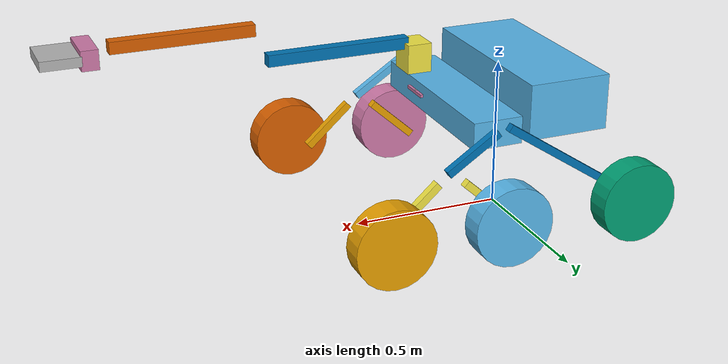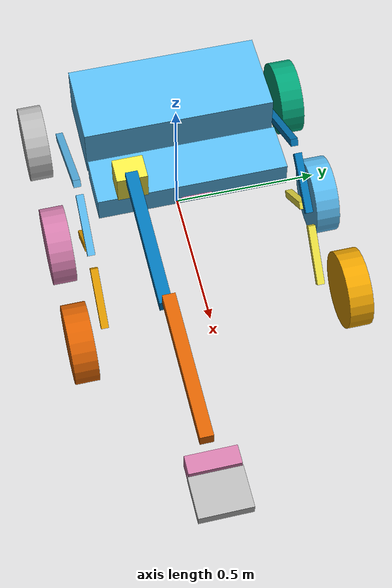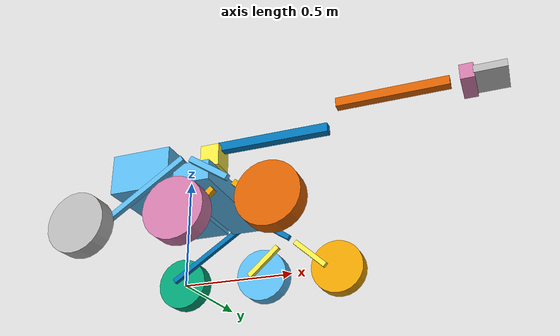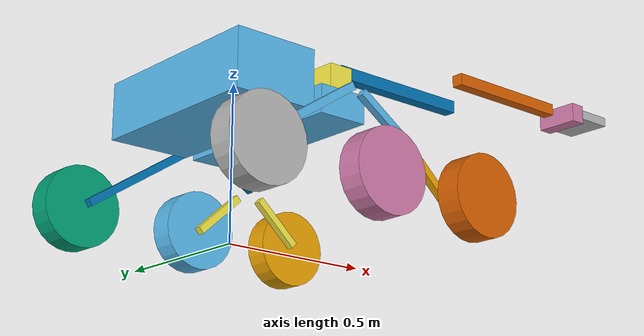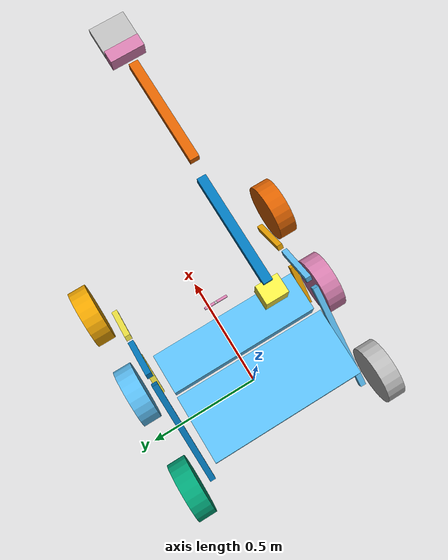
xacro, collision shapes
<?xml version="1.0"?>
<robot xmlns:xacro="http://www.ros.org/wiki/xacro" name="rover">

  <!-- Constants -->

  <xacro:property name="base_width" value="0.63"/>
  <xacro:property name="base_len" value="0.478"/>
  <xacro:property name="base_height" value="0.183"/>
  <xacro:property name="wheel_radius" value="0.13"/>
  <xacro:property name="wheel_width" value="0.08"/>
  <xacro:property name="wheel_mass" value="3"/>
  <xacro:property name="chassis_mass" value="15"/>
  <xacro:property name="wheel_torque" value="2.68"/>

  <xacro:property name="TAU" value="6.2831855"/>

  <!-- Inertial Macros-->

  <xacro:macro name="cylinder_inertia" params="m r h">
    <inertial>
      <mass value="${m}"/>
      <inertia ixx="${m*(3*r*r+h*h)/12}" ixy="0" ixz="0"
               iyy="${m*(3*r*r+h*h)/12}" iyz="0"
               izz="${m*r*r/2}"/>
    </inertial>
  </xacro:macro>

  <xacro:macro name="box_inertia" params="m d w h">
    <inertial>
      <mass value="${m}"/>
      <inertia ixx="${m / 12.0 * (w*w + h*h)}" ixy="0" ixz="0"
               iyy="${m / 12.0 * (d*d + h*h)}" iyz="0"
               izz="${m / 12.0 * (d*d + w*w)}"/>
    </inertial>
  </xacro:macro>

  <xacro:macro name="sphere_inertia" params="m r">
    <inertial>
      <mass value="${m}"/>
      <inertia ixx="${2.0*m*(r*r)/5.0}" ixy="0" ixz="0"
               iyy="${2.0*m*(r*r)/5.0}" iyz="0"
               izz="${2.0*m*(r*r)/5.0}"/>
    </inertial>
  </xacro:macro>

  <!-- Joints/Links Macros -->

  <xacro:macro name="arm_link" params="name m x y z dz:=0">
    <link name="arm_${name}_link">
      <xacro:box_inertia m="${m}" d="${y}" w="${x}" h="${z}"/>
      <visual>
        <geometry>
          <mesh filename="package://mrover/urdf/meshes/arm_${name}.fbx"/>
        </geometry>
      </visual>
      <collision>
        <origin xyz="${x / 2} 0 ${dz}"/>
        <geometry>
          <box size="${x * 0.85} ${y} ${z}"/>
        </geometry>
      </collision>
    </link>
  </xacro:macro>

  <xacro:macro name="arm_revolute_joint" params="parent child x y z lower upper">
    <joint name="${parent}_link_to_${child}_link" type="revolute">
      <origin xyz="${x} ${y} ${z}"/>
      <parent link="${parent}_link"/>
      <child link="${child}_link"/>
      <axis xyz="0 1 0"/>
      <limit lower="${lower}" upper="${upper}" effort="0" velocity="0"/>
    </joint>
  </xacro:macro>

  <xacro:macro name="wheel" params="pos side reflect">
    <link name="${pos}_${side}_wheel_link">
      <xacro:cylinder_inertia m="${wheel_mass}" r="${wheel_radius}" h="${wheel_width}"/>
      <visual>
        <geometry>
          <mesh filename="package://mrover/urdf/meshes/rover_${side}_wheel.fbx"/>
        </geometry>
      </visual>
      <collision>
        <geometry>
          <cylinder length="${wheel_width}" radius="${wheel_radius}"/>
        </geometry>
      </collision>
    </link>
  </xacro:macro>

  <xacro:macro name="wheels" params="side reflect">
    <xacro:wheel pos="front" side="${side}" reflect="${reflect}"/>
    <xacro:wheel pos="center" side="${side}" reflect="${reflect}"/>
    <xacro:wheel pos="back" side="${side}" reflect="${reflect}"/>

    <link name="${side}_bogie_link">
      <xacro:box_inertia m="3" d="0.5" w="0.5" h="0.5"/>
      <visual>
        <geometry>
          <mesh filename="package://mrover/urdf/meshes/rover_${side}_bogie.fbx"/>
        </geometry>
      </visual>
      <collision>
        <origin xyz="-0.14 0.1 0" rpy="0 0 -0.734"/>
        <geometry>
          <box size="0.2 0.025 0.025"/>
        </geometry>
      </collision>
      <collision>
        <origin xyz="0.1 0.088 0" rpy="0 0 0.734"/>
        <geometry>
          <box size="0.2 0.025 0.025"/>
        </geometry>
      </collision>
    </link>

    <link name="${side}_rocker_link">
      <xacro:box_inertia m="3" d="0.5" w="0.5" h="0.5"/>
      <visual>
        <geometry>
          <mesh filename="package://mrover/urdf/meshes/rover_${side}_rocker.fbx"/>
        </geometry>
      </visual>
      <collision>
        <origin xyz="0.11 0.077 0" rpy="0 0 0.585"/>
        <geometry>
          <box size="0.2 0.025 0.025"/>
        </geometry>
      </collision>
      <collision>
        <origin xyz="-0.22 0.15 0" rpy="0 0 -0.585"/>
        <geometry>
          <box size="0.5 0.025 0.025"/>
        </geometry>
      </collision>
    </link>

    <joint name="chassis_link_to_${side}_rocker_link" type="revolute">
      <parent link="chassis_link"/>
      <child link="${side}_rocker_link"/>
      <origin xyz="0.164665 ${reflect * (base_width/2 + 0.05)} 0" rpy="${-TAU/4} 0 0"/>
      <axis xyz="0 0 1"/>
      <limit lower="-0.122173" upper="0.523599" effort="0" velocity="0"/>
    </joint>

    <joint name="${side}_rocker_link_to_back_${side}_wheel_link" type="continuous">
      <parent link="${side}_rocker_link"/>
      <child link="back_${side}_wheel_link"/>
      <origin xyz="-0.417094 0.28513 ${reflect * 0.09}"/>
      <axis xyz="0 0 1"/>
      <limit effort="${wheel_torque}" velocity="0"/>
    </joint>

    <joint name="${side}_rocker_link_to_${side}_bogie_link" type="revolute">
      <parent link="${side}_rocker_link"/>
      <child link="${side}_bogie_link"/>
      <origin xyz="0.198948 0.138674 0"/>
      <axis xyz="0 0 1"/>
      <limit lower="-0.349066" upper="0.349066" effort="0" velocity="0"/>
    </joint>

    <joint name="${side}_bogie_link_to_front_${side}_wheel_link" type="continuous">
      <parent link="${side}_bogie_link"/>
      <child link="front_${side}_wheel_link"/>
      <origin xyz="0.215233 0.147933 ${reflect * 0.09}"/>
      <axis xyz="0 0 1"/>
      <limit effort="${wheel_torque}" velocity="0"/>
    </joint>

    <joint name="${side}_bogie_link_to_center_${side}_wheel_link" type="continuous">
      <parent link="${side}_bogie_link"/>
      <child link="center_${side}_wheel_link"/>
      <origin xyz="-0.173532 0.147659 ${reflect * 0.09}"/>
      <axis xyz="0 0 1"/>
      <limit effort="${wheel_torque}" velocity="0"/>
    </joint>
  </xacro:macro>

  <!-- Joints/Links -->

  <link name="base_link"/>

  <link name="chassis_link">
    <xacro:box_inertia m="${chassis_mass}" d="${base_len}" w="${base_width}" h="${base_height}"/>
    <visual>
      <geometry>
        <mesh filename="package://mrover/urdf/meshes/rover_chassis.fbx"/>
      </geometry>
    </visual>
    <collision>
      <origin xyz="-0.085906 0 0"/>
      <geometry>
        <box size="0.277 ${base_width} ${base_height}"/>
      </geometry>
    </collision>
    <collision>
      <origin xyz="0.163609 0 -0.049449"/>
      <geometry>
        <box size="0.167 ${base_width} 0.0891 "/>
      </geometry>
    </collision>
  </link>

  <link name="arm_base_link"/>

  <joint name="base_link_to_arm_base_link" type="fixed">
    <origin xyz="0.199228 -0.200235 0.540196"/>
    <parent link="base_link"/>
    <child link="arm_base_link"/>
  </joint>

  <joint name="base_link_to_chassis_link" type="fixed">
    <origin xyz="0 0 0.439675"/>
    <parent link="base_link"/>
    <child link="chassis_link"/>
  </joint>

  <xacro:arm_link name="a" m="1" x="0.1" y="0.1" z="0.1"/>
  <xacro:arm_link name="b" m="1" x="0.58" y="0.04" z="0.04"/>
  <xacro:arm_link name="c" m="1" x="0.55" y="0.04" z="0.04" dz="0.1"/>
  <xacro:arm_link name="d" m="1" x="0.065" y="0.15" z="0.065"/>
  <xacro:arm_link name="e" m="1" x="0.15" y="0.155" z="0.032"/>

  <joint name="chassis_link_to_arm_a_link" type="prismatic">
    <origin xyz="0.164882 -0.200235 0.051497"/>
    <parent link="chassis_link"/>
    <child link="arm_a_link"/>
    <axis xyz="0 1 0"/>
    <limit lower="0" upper="0.4" effort="0" velocity="0"/>
  </joint>

  <xacro:arm_revolute_joint parent="arm_a" child="arm_b"
                            x="0.034346" y="0" z="0.049024"
                            lower="${-TAU / 8}" upper="0"/>
  <xacro:arm_revolute_joint parent="arm_b" child="arm_c"
                            x="0.534365" y="0" z="0.009056"
                            lower="-0.959931" upper="2.87979"/>
  <xacro:arm_revolute_joint parent="arm_c" child="arm_d"
                            x="0.546033" y="0" z="0.088594"
                            lower="-2.35619" upper="2.35619"/>

  <joint name="arm_d_link_to_arm_e_link" type="revolute">
    <origin xyz="0.044886 0 0"/>
    <parent link="arm_d_link"/>
    <child link="arm_e_link"/>
    <axis xyz="1 0 0"/>
    <limit lower="-2.35619" upper="2.35619" effort="0" velocity="0"/>
  </joint>

  <xacro:wheels side="left" reflect="1"/>
  <xacro:wheels side="right" reflect="-1"/>

  <joint name="chassis_link_to_left_gps" type="fixed">
    <origin xyz="0 0.1 0"/>
    <parent link="chassis_link"/>
    <child link="left_gps"/>
  </joint>

  <link name="left_gps"/>

  <joint name="chassis_link_to_right_gps" type="fixed">
    <origin xyz="0 -0.1 0"/>
    <parent link="chassis_link"/>
    <child link="right_gps"/>
  </joint>

  <link name="right_gps"/>

    <joint name="chassis_link_to_center_gps" type="fixed">
      <origin xyz="0 0 1"/>
      <parent link="chassis_link"/>
      <child link="center_gps"/>
    </joint>

    <link name="center_gps"/>

  <joint name="chassis_link_to_imu" type="fixed">
    <origin xyz="0 0 0"/>
    <parent link="chassis_link"/>
    <child link="imu"/>
  </joint>

  <link name="imu"/>

  <!-- TODO(quintin): Import the ZED URDF here -->

  <joint name="chassis_link_to_zed_left_camera_frame" type="fixed">
    <origin xyz="0.3 0 0"/>
    <parent link="chassis_link"/>
    <child link="zed_left_camera_frame"/>
  </joint>

  <link name="zed_left_camera_frame">
    <collision>
      <geometry>
        <box size="0.01 0.1 0.01"/>
      </geometry>
    </collision>
  </link>

  <joint name="chassis_link_to_long_range_camera_link" type="fixed">
    <origin xyz="0.3 0 0"/>
    <parent link="chassis_link"/>
    <child link="long_range_camera_link"/>
  </joint>

  <link name="long_range_camera_link">
    <collision>
      <geometry>
        <box size="0.01 0.01 0.01"/>
      </geometry>
    </collision>
  </link>

  <joint name="chassis_link_to_mast_link" type="fixed">
    <origin xyz="0.0505 -0.086 0.558"/>
    <parent link="chassis_link"/>
    <child link="mast_link"/>
  </joint>

  <link name="mast_link"/>

  <joint name="mast_link_to_zed_mini_camera" type="continuous">
    <origin xyz="0.05 0 0.0"/>
    <parent link="mast_link"/>
    <child link="zed_mini_camera"/>
    <axis xyz="0 0 1"/>
    <limit effort="2.68" velocity="0"/>
  </joint>

  <link name="zed_mini_camera"/>

</robot>
